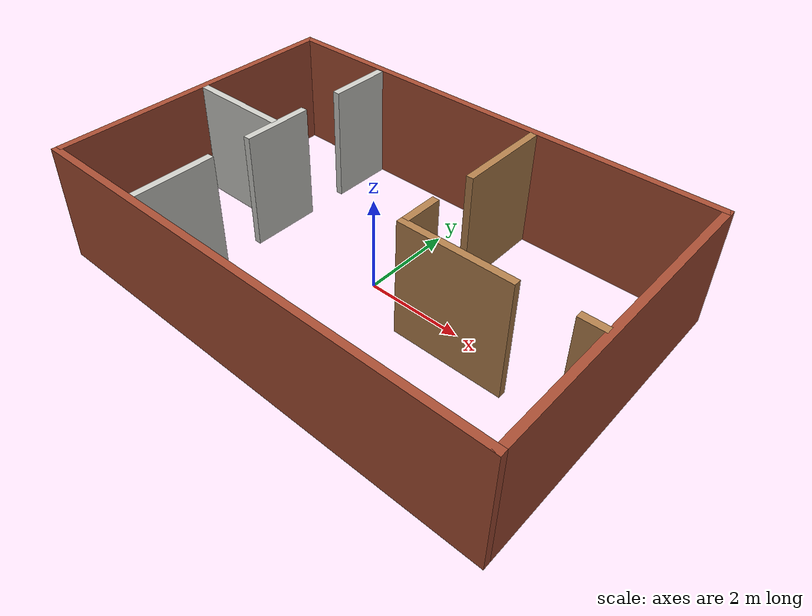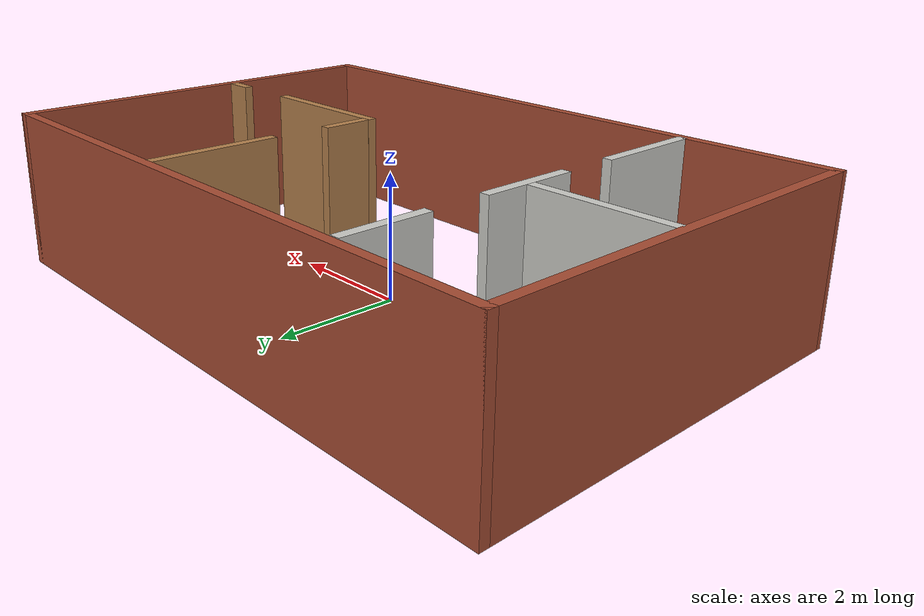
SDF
<?xml version='1.0'?>
<sdf version='1.7'>
  <model name='Scenario'>
    <pose>0.01 0 0 0 -0 0</pose>
    <link name='Wall_1'>
      <collision name='Wall_1_Collision'>
        <geometry>
          <box>
            <size>10.082 0.15 2.5</size>
          </box>
        </geometry>
        <pose>0 0 1.25 0 -0 0</pose>
      </collision>
      <visual name='Wall_1_Visual'>
        <pose>0 0 1.25 0 -0 0</pose>
        <geometry>
          <box>
            <size>10.082 0.15 2.5</size>
          </box>
        </geometry>
        <material>
          <script>
            <uri>file://media/materials/scripts/gazebo.material</uri>
            <name>Gazebo/Bricks</name>
          </script>
          <ambient>1 1 1 1</ambient>
        </material>
        <meta>
          <layer>0</layer>
        </meta>
      </visual>
      <pose>0 3.225 0 0 -0 0</pose>
    </link>
    <link name='Wall_11'>
      <collision name='Wall_11_Collision'>
        <geometry>
          <box>
            <size>10.08 0.15 2.5</size>
          </box>
        </geometry>
        <pose>0 0 1.25 0 -0 0</pose>
      </collision>
      <visual name='Wall_11_Visual'>
        <pose>0 0 1.25 0 -0 0</pose>
        <geometry>
          <box>
            <size>10.08 0.15 2.5</size>
          </box>
        </geometry>
        <material>
          <script>
            <uri>file://media/materials/scripts/gazebo.material</uri>
            <name>Gazebo/Bricks</name>
          </script>
          <ambient>1 1 1 1</ambient>
        </material>
        <meta>
          <layer>0</layer>
        </meta>
      </visual>
      <pose>0.001 -3.225 0 0 -0 3.14159</pose>
    </link>
    <link name='Wall_13'>
      <collision name='Wall_13_Collision'>
        <geometry>
          <box>
            <size>6.5 0.15 2.5</size>
          </box>
        </geometry>
        <pose>0 0 1.25 0 -0 0</pose>
      </collision>
      <visual name='Wall_13_Visual'>
        <pose>0 0 1.25 0 -0 0</pose>
        <geometry>
          <box>
            <size>6.5 0.15 2.5</size>
          </box>
        </geometry>
        <material>
          <script>
            <uri>file://media/materials/scripts/gazebo.material</uri>
            <name>Gazebo/Bricks</name>
          </script>
          <ambient>1 1 1 1</ambient>
        </material>
        <meta>
          <layer>0</layer>
        </meta>
      </visual>
      <pose>-4.966 0.05 0 0 -0 -1.5708</pose>
    </link>
    <link name='Wall_15'>
      <collision name='Wall_15_Collision'>
        <geometry>
          <box>
            <size>1.35 0.15 2.5</size>
          </box>
        </geometry>
        <pose>0 0 1.25 0 -0 0</pose>
      </collision>
      <visual name='Wall_15_Visual'>
        <pose>0 0 1.25 0 -0 0</pose>
        <geometry>
          <box>
            <size>1.35 0.15 2.5</size>
          </box>
        </geometry>
        <material>
          <script>
            <uri>file://media/materials/scripts/gazebo.material</uri>
            <name>Gazebo/CeilingTiled</name>
          </script>
          <ambient>1 0.764706 0.305882 1</ambient>
        </material>
        <meta>
          <layer>0</layer>
        </meta>
      </visual>
      <pose>-2.70015 2.45469 0 0 -0 -1.5708</pose>
    </link>
    <link name='Wall_17'>
      <collision name='Wall_17_Collision'>
        <geometry>
          <box>
            <size>1.5 0.15 2.5</size>
          </box>
        </geometry>
        <pose>0 0 1.25 0 -0 0</pose>
      </collision>
      <visual name='Wall_17_Visual'>
        <pose>0 0 1.25 0 -0 0</pose>
        <geometry>
          <box>
            <size>1.5 0.15 2.5</size>
          </box>
        </geometry>
        <material>
          <script>
            <uri>file://media/materials/scripts/gazebo.material</uri>
            <name>Gazebo/CeilingTiled</name>
          </script>
          <ambient>1 0.764706 0.305882 1</ambient>
        </material>
        <meta>
          <layer>0</layer>
        </meta>
      </visual>
      <pose>-2.70015 0.136023 0 0 -0 -1.5708</pose>
    </link>
    <link name='Wall_19'>
      <collision name='Wall_19_Collision'>
        <geometry>
          <box>
            <size>2.14985 0.15 2.5</size>
          </box>
        </geometry>
        <pose>0 0 1.25 0 -0 0</pose>
      </collision>
      <visual name='Wall_19_Visual'>
        <pose>0 0 1.25 0 -0 0</pose>
        <geometry>
          <box>
            <size>2.14985 0.15 2.5</size>
          </box>
        </geometry>
        <material>
          <script>
            <uri>file://media/materials/scripts/gazebo.material</uri>
            <name>Gazebo/CeilingTiled</name>
          </script>
          <ambient>1 1 1 1</ambient>
        </material>
        <meta>
          <layer>0</layer>
        </meta>
      </visual>
      <pose>-3.833 0.153 0 0 -0 3.14159</pose>
    </link>
    <link name='Wall_21'>
      <collision name='Wall_21_Collision'>
        <geometry>
          <box>
            <size>1.75 0.15 2.5</size>
          </box>
        </geometry>
        <pose>0 0 1.25 0 -0 0</pose>
      </collision>
      <visual name='Wall_21_Visual'>
        <pose>0 0 1.25 0 -0 0</pose>
        <geometry>
          <box>
            <size>1.75 0.15 2.5</size>
          </box>
        </geometry>
        <material>
          <script>
            <uri>file://media/materials/scripts/gazebo.material</uri>
            <name>Gazebo/CeilingTiled</name>
          </script>
          <ambient>1 0.764706 0.305882 1</ambient>
        </material>
        <meta>
          <layer>0</layer>
        </meta>
      </visual>
      <pose>-2.70015 -2.32424 0 0 -0 1.5708</pose>
    </link>
    <link name='Wall_23'>
      <collision name='Wall_23_Collision'>
        <geometry>
          <box>
            <size>2.00 0.15 2.5</size>
          </box>
        </geometry>
        <pose>0 0 1.25 0 -0 0</pose>
      </collision>
      <visual name='Wall_23_Visual'>
        <pose>0 0 1.25 0 -0 0</pose>
        <geometry>
          <box>
            <size>2.00 0.15 2.5</size>
          </box>
        </geometry>
        <material>
          <script>
            <uri>file://media/materials/scripts/gazebo.material</uri>
            <name>Gazebo/Wood</name>
          </script>
          <ambient>1 1 1 1</ambient>
        </material>
        <meta>
          <layer>0</layer>
        </meta>
      </visual>
      <pose>1.20014 2.15716 0 0 -0 -1.5708</pose>
    </link>
    <link name='Wall_25'>
      <collision name='Wall_25_Collision'>
        <geometry>
          <box>
            <size>0.80 0.15 2.5</size>
          </box>
        </geometry>
        <pose>0 0 1.25 0 -0 0</pose>
      </collision>
      <visual name='Wall_25_Visual'>
        <pose>0 0 1.25 0 -0 0</pose>
        <geometry>
          <box>
            <size>0.80 0.15 2.5</size>
          </box>
        </geometry>
        <material>
          <script>
            <uri>file://media/materials/scripts/gazebo.material</uri>
            <name>Gazebo/Wood</name>
          </script>
          <ambient>1 1 1 1</ambient>
        </material>
        <meta>
          <layer>0</layer>
        </meta>
      </visual>
      <pose>1.165 -0.13 0 0 -0 -1.5708</pose>
    </link>
    <link name='Wall_28'>
      <collision name='Wall_28_Collision'>
        <geometry>
          <box>
            <size>2.326 0.15 2.5</size>
          </box>
        </geometry>
        <pose>0 0 1.25 0 -0 0</pose>
      </collision>
      <visual name='Wall_28_Visual'>
        <pose>0 0 1.25 0 -0 0</pose>
        <geometry>
          <box>
            <size>2.326 0.15 2.5</size>
          </box>
        </geometry>
        <material>
          <script>
            <uri>file://media/materials/scripts/gazebo.material</uri>
            <name>Gazebo/Wood</name>
          </script>
          <ambient>1 1 1 1</ambient>
        </material>
        <meta>
          <layer>0</layer>
        </meta>
      </visual>
      <pose>2.252 -0.588 0 0 -0 3.14159</pose>
    </link>
    <link name='Wall_30'>
      <collision name='Wall_30_Collision'>
        <geometry>
          <box>
            <size>0.5 0.15 2.5</size>
          </box>
        </geometry>
        <pose>0 0 1.25 0 -0 0</pose>
      </collision>
      <visual name='Wall_30_Visual'>
        <pose>0 0 1.25 0 -0 0</pose>
        <geometry>
          <box>
            <size>0.5 0.15 2.5</size>
          </box>
        </geometry>
        <material>
          <script>
            <uri>file://media/materials/scripts/gazebo.material</uri>
            <name>Gazebo/Wood</name>
          </script>
          <ambient>1 1 1 1</ambient>
        </material>
        <meta>
          <layer>0</layer>
        </meta>
      </visual>
      <pose>4.68076 -0.553202 0 0 -0 0</pose>
    </link>
    <link name='Wall_9'>
      <collision name='Wall_9_Collision'>
        <geometry>
          <box>
            <size>6.6 0.15 2.5</size>
          </box>
        </geometry>
        <pose>0 0 1.25 0 -0 0</pose>
      </collision>
      <visual name='Wall_9_Visual'>
        <pose>0 0 1.25 0 -0 0</pose>
        <geometry>
          <box>
            <size>6.6 0.15 2.5</size>
          </box>
        </geometry>
        <material>
          <script>
            <uri>file://media/materials/scripts/gazebo.material</uri>
            <name>Gazebo/Bricks</name>
          </script>
          <ambient>1 1 1 1</ambient>
        </material>
        <meta>
          <layer>0</layer>
        </meta>
      </visual>
      <pose>4.966 0 0 0 -0 -1.5708</pose>
    </link>
    <static>1</static>
  </model>
</sdf>
